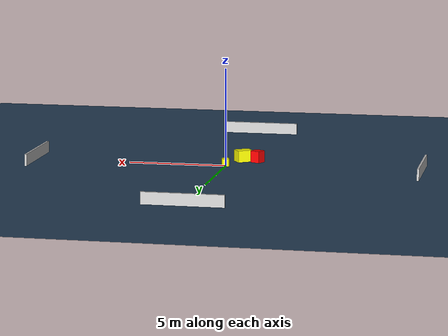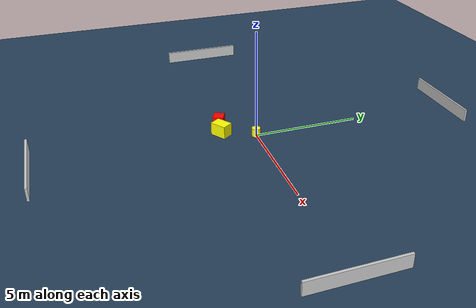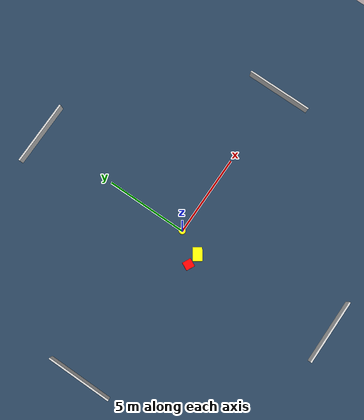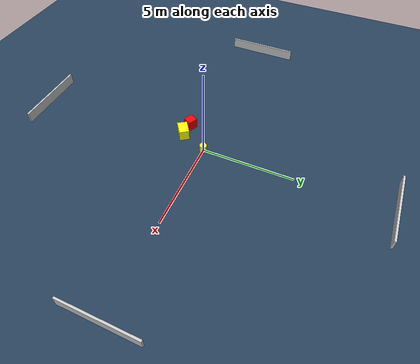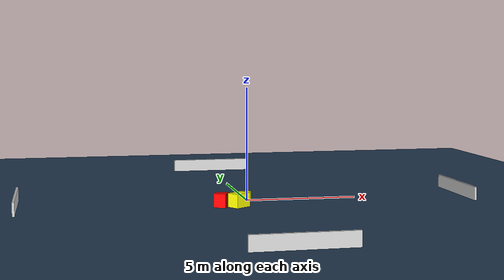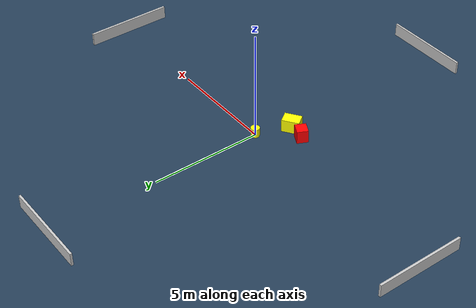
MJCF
<?xml version="1.0" ?>
<mujoco model="generated_environment">
  <option timestep="0.01" integrator="RK4" cone="elliptic"/>
  <default>
    <geom density="1"/>
  </default>
  <asset>
    <texture builtin="gradient" height="3072" name="skybox" rgb1="0.3 0.5 0.7" rgb2="0 0 0" type="skybox" width="512"/>
    <texture builtin="checker" height="300" name="groundplane" rgb1="0.2 0.3 0.4" rgb2="0.1 0.2 0.3" type="2d" width="300"/>
    <material name="groundplane" reflectance="0.2" texrepeat="5 5" texture="groundplane"/>
  </asset>
  <worldbody>
    <light dir="0 0 -1" directional="true" pos="0 0 1.5"/>
    <geom condim="3" friction="0.5 0.005 0.001" material="groundplane" name="floor" pos="0 0 0" size="0 0 0.05" type="plane"/>
    <body name="walls">
      <geom name="wall_1" condim="4" pos="-10.0 0.0 0.3" rgba="0.800000011920929 0.800000011920929 0.800000011920929 1.0" size="0.05 2.0 0.3" type="box"/>
      <geom name="wall_2" condim="4" pos="10.0 0.0 0.3" rgba="0.800000011920929 0.800000011920929 0.800000011920929 1.0" size="0.05 2.0 0.3" type="box"/>
      <geom name="wall_3" condim="4" pos="0.0 -10.0 0.3" rgba="0.800000011920929 0.800000011920929 0.800000011920929 1.0" size="2.0 0.05 0.3" type="box"/>
      <geom name="wall_4" condim="4" pos="0.0 10.0 0.3" rgba="0.800000011920929 0.800000011920929 0.800000011920929 1.0" size="2.0 0.05 0.3" type="box"/>
    </body>
    <body name="robot">
      <joint name="joint_x" type="slide" pos="0 0 0" axis="1 0 0"/>
      <joint name="joint_y" type="slide" pos="0 0 0" axis="0 1 0"/>
      <geom name="robot" type="cylinder" pos="0.0 0.0 0.2" size="0.2 0.2 0.0" mass="5.0" friction="1.0 0.005 0.0001" condim="4" rgba="1.0 1.0 0.0 1.0"/>
    </body>
    <body name="obstacle_1_movable">
      <geom name="obstacle_1_movable" condim="4" pos="-0.6268665373891072 -1.482870159808011 0.3" euler="0 0 304.68934396039515" friction="0.0 0.005 0.001" rgba="1.0 1.0 0.0 1.0" size="0.27200358445926537 0.39188646236875935 0.3" type="box" mass="0.1"/>
      <joint type="free"/>
    </body>
    <body name="obstacle_2_static">
      <geom name="obstacle_2_static" condim="4" pos="-1.3869052374434607 -1.3891347255121382 0.3" euler="0 0 333.81038821925705" friction="0.0 0.005 0.001" rgba="1.0 0.0 0.0 1.0" size="0.2669012771575161 0.25101696771836446 0.3" type="box"/>
    </body>
  </worldbody>
  <actuator>
    <motor name="actuator_x" joint="joint_x" gear="1" ctrlrange="-1 1"/>
    <motor name="actuator_y" joint="joint_y" gear="1" ctrlrange="-1 1"/>
  </actuator>
</mujoco>
